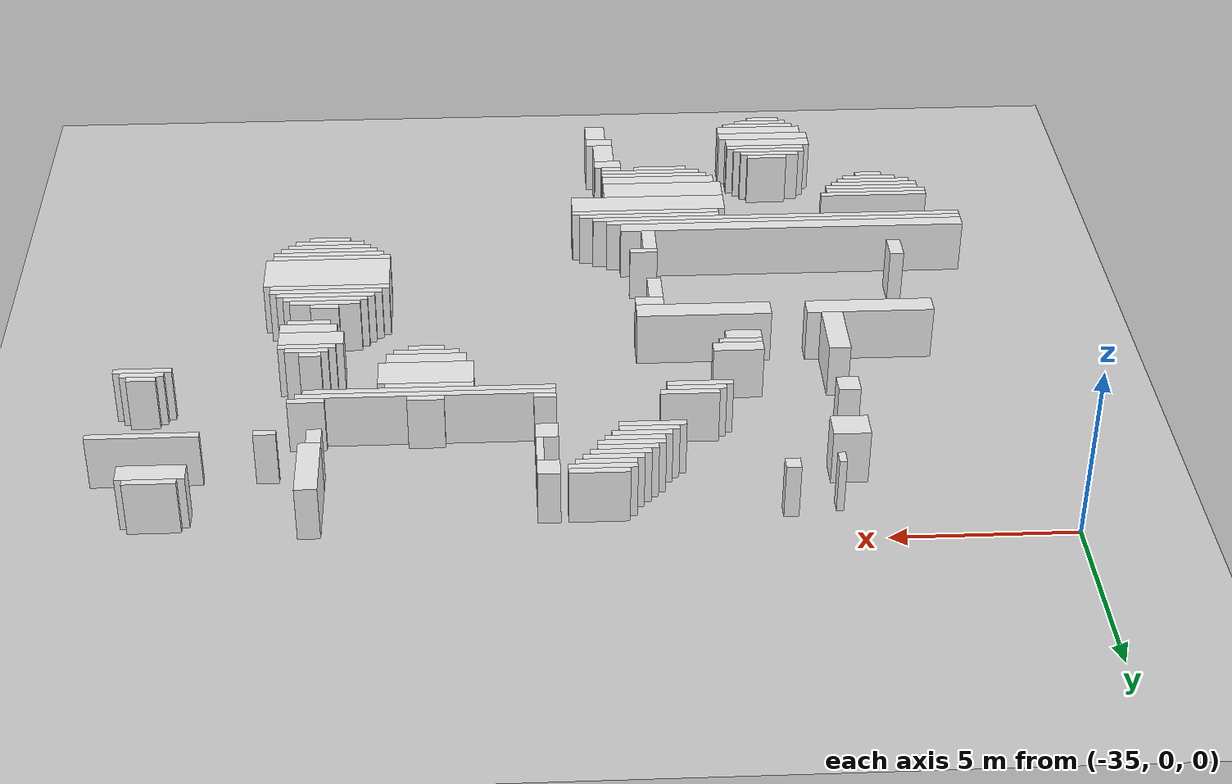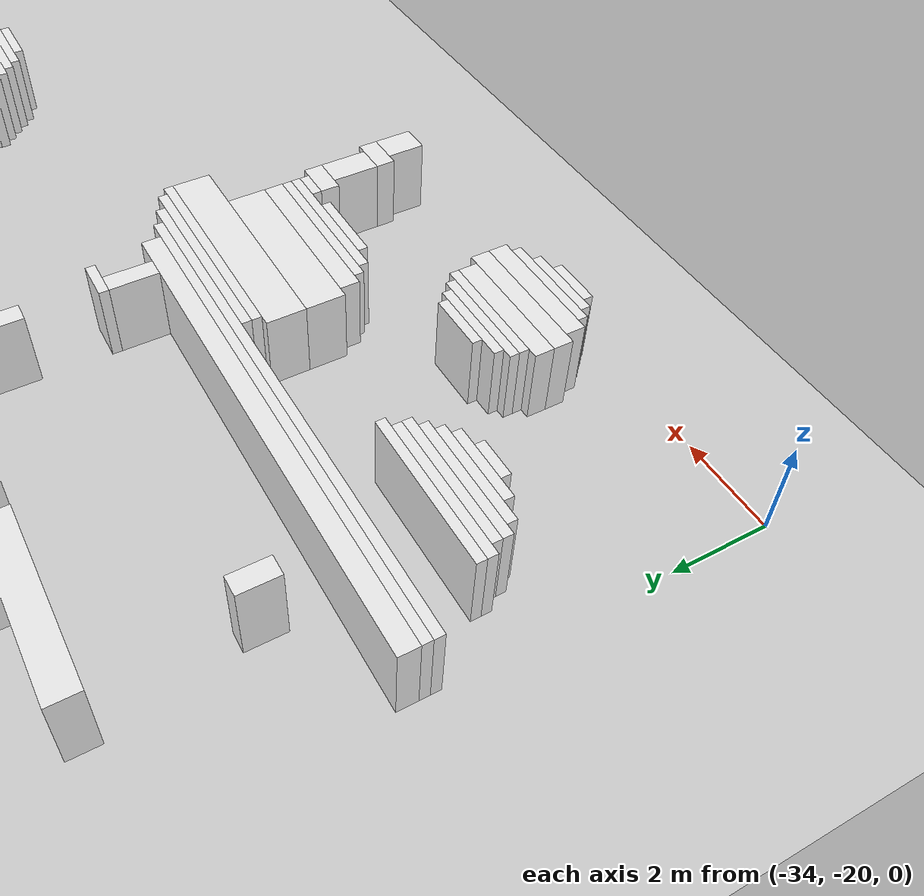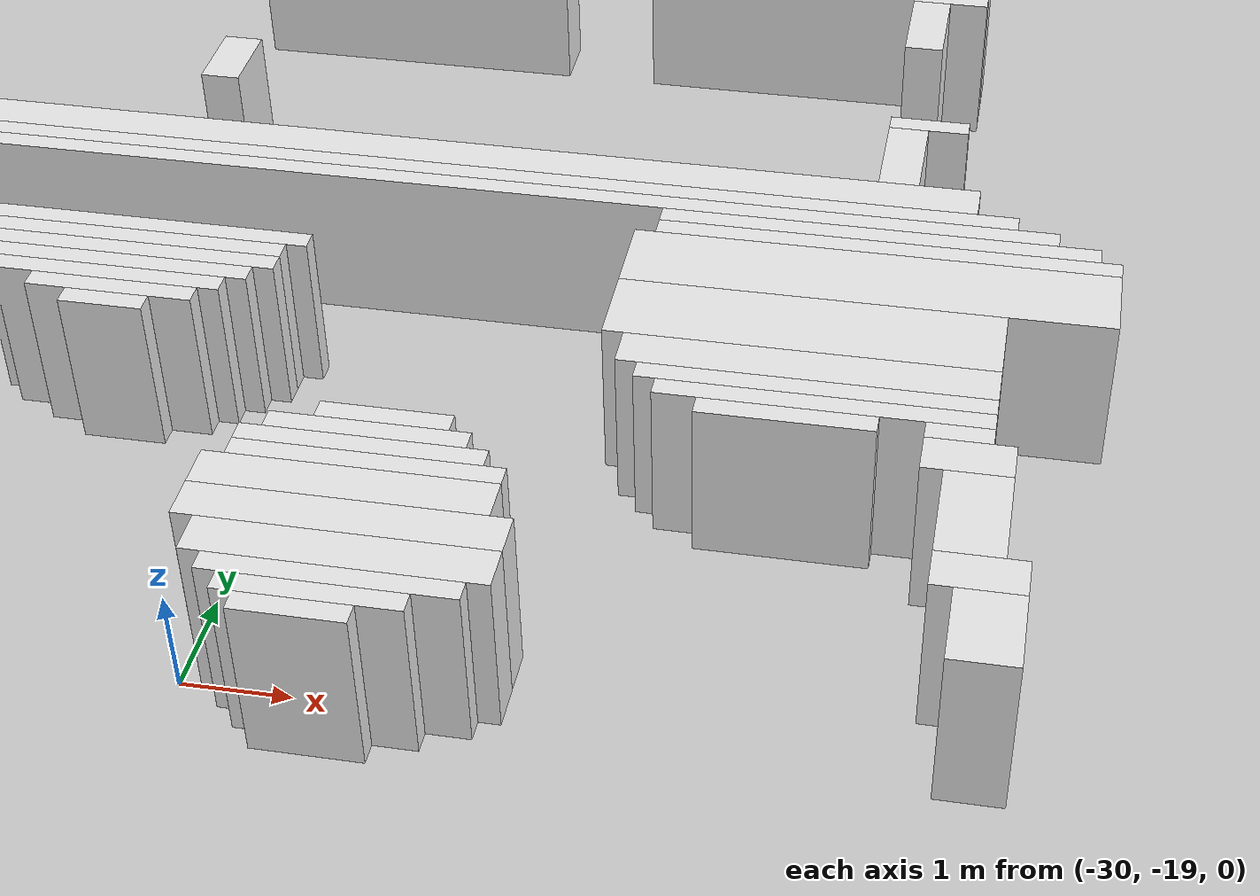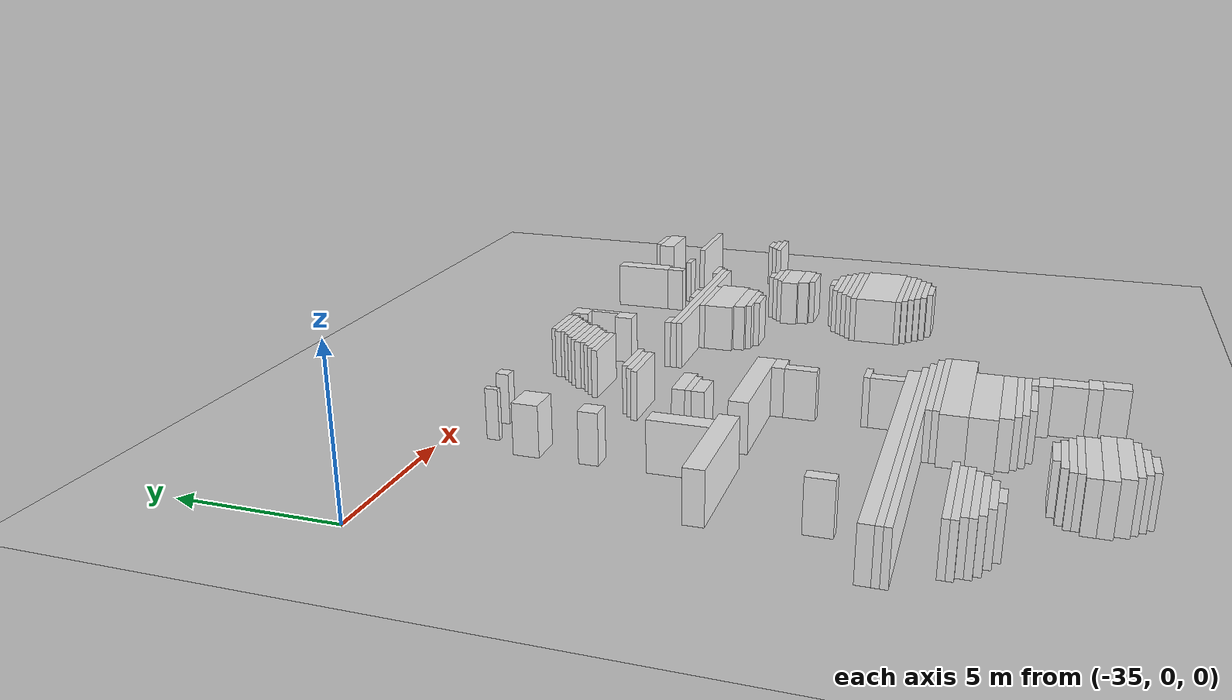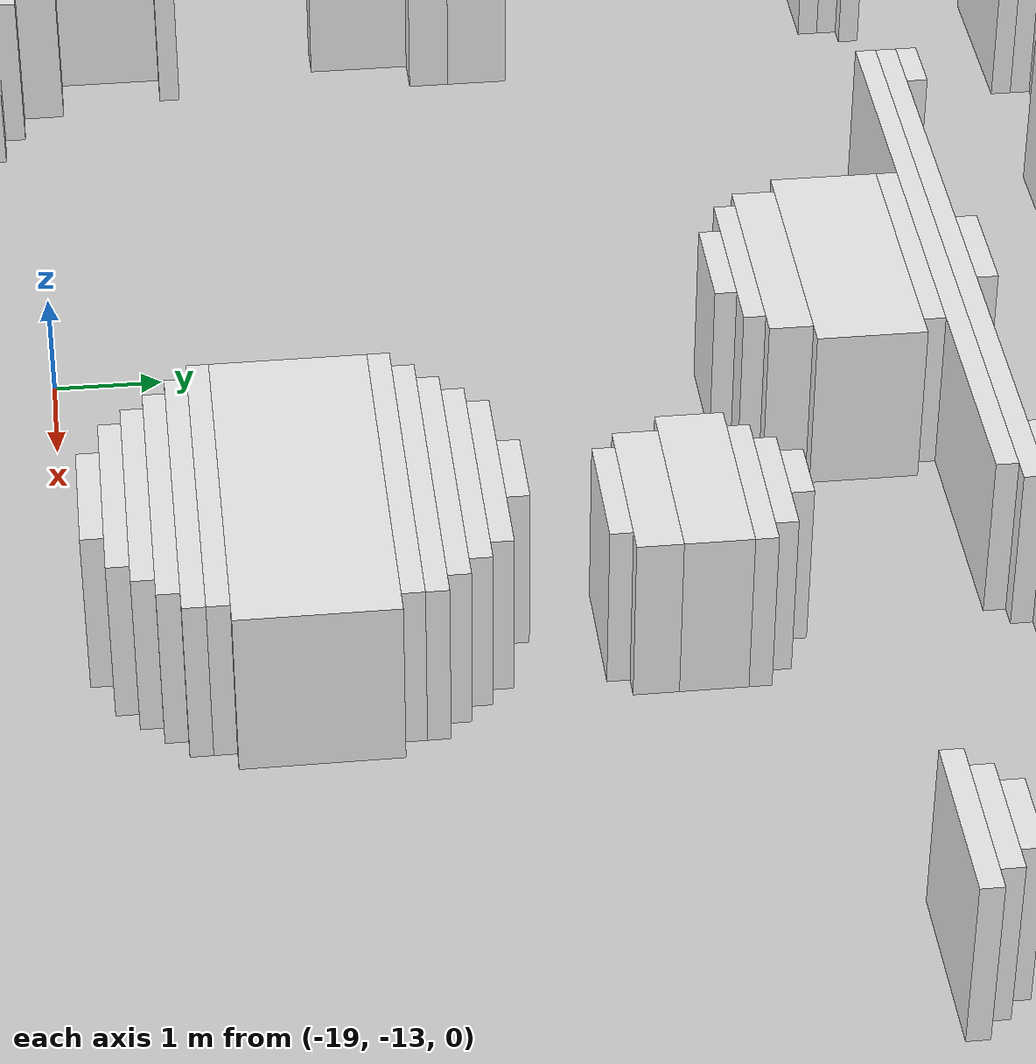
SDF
<sdf version="1.7">
 <world name="default">
  <model name="ground_plane">
   <static>1</static>
   <link name="link">
    <collision name="collision">
     <geometry><plane><normal>0 0 1</normal><size>120 120</size></plane></geometry>
    </collision>
    <visual name="visual">
     <geometry><plane><normal>0 0 1</normal><size>120 120</size></plane></geometry>
     <material>
      <script><uri>file://media/materials/scripts/gazebo.material</uri><name>Gazebo/Grey</name></script>
     </material>
    </visual>
   </link>
  </model>
  <model name="random_complex_03_model">
   <static>1</static>
   <link name="obs_1676">
    <pose>-22.6000 -1.1000 0.8000 0 0 0</pose>
    <collision name="obs_1676_col"><geometry><box><size>1.6000 0.2000 1.6000</size></box></geometry></collision>
    <visual name="obs_1676_vis">
     <geometry><box><size>1.6000 0.2000 1.6000</size></box></geometry>
     <material>
      <script><uri>file://media/materials/scripts/gazebo.material</uri><name>Gazebo/White</name></script>
     </material>
    </visual>
   </link>
   <link name="obs_1677">
    <pose>-11.1000 -1.1000 0.8000 0 0 0</pose>
    <collision name="obs_1677_col"><geometry><box><size>1.4000 0.2000 1.6000</size></box></geometry></collision>
    <visual name="obs_1677_vis">
     <geometry><box><size>1.4000 0.2000 1.6000</size></box></geometry>
     <material>
      <script><uri>file://media/materials/scripts/gazebo.material</uri><name>Gazebo/White</name></script>
     </material>
    </visual>
   </link>
   <link name="obs_1683">
    <pose>-27.6000 -1.2000 0.8000 0 0 0</pose>
    <collision name="obs_1683_col"><geometry><box><size>0.4000 0.4000 1.6000</size></box></geometry></collision>
    <visual name="obs_1683_vis">
     <geometry><box><size>0.4000 0.4000 1.6000</size></box></geometry>
     <material>
      <script><uri>file://media/materials/scripts/gazebo.material</uri><name>Gazebo/White</name></script>
     </material>
    </visual>
   </link>
   <link name="obs_1686">
    <pose>-22.7000 -1.3000 0.8000 0 0 0</pose>
    <collision name="obs_1686_col"><geometry><box><size>1.8000 0.2000 1.6000</size></box></geometry></collision>
    <visual name="obs_1686_vis">
     <geometry><box><size>1.8000 0.2000 1.6000</size></box></geometry>
     <material>
      <script><uri>file://media/materials/scripts/gazebo.material</uri><name>Gazebo/White</name></script>
     </material>
    </visual>
   </link>
   <link name="obs_1695">
    <pose>-21.3000 -1.3000 0.8000 0 0 0</pose>
    <collision name="obs_1695_col"><geometry><box><size>0.6000 0.6000 1.6000</size></box></geometry></collision>
    <visual name="obs_1695_vis">
     <geometry><box><size>0.6000 0.6000 1.6000</size></box></geometry>
     <material>
      <script><uri>file://media/materials/scripts/gazebo.material</uri><name>Gazebo/White</name></script>
     </material>
    </visual>
   </link>
   <link name="obs_1696">
    <pose>-28.9000 -1.4000 0.8000 0 0 0</pose>
    <collision name="obs_1696_col"><geometry><box><size>0.2000 0.4000 1.6000</size></box></geometry></collision>
    <visual name="obs_1696_vis">
     <geometry><box><size>0.2000 0.4000 1.6000</size></box></geometry>
     <material>
      <script><uri>file://media/materials/scripts/gazebo.material</uri><name>Gazebo/White</name></script>
     </material>
    </visual>
   </link>
   <link name="obs_1698">
    <pose>-22.8000 -1.5000 0.8000 0 0 0</pose>
    <collision name="obs_1698_col"><geometry><box><size>1.6000 0.2000 1.6000</size></box></geometry></collision>
    <visual name="obs_1698_vis">
     <geometry><box><size>1.6000 0.2000 1.6000</size></box></geometry>
     <material>
      <script><uri>file://media/materials/scripts/gazebo.material</uri><name>Gazebo/White</name></script>
     </material>
    </visual>
   </link>
   <link name="obs_1704">
    <pose>-11.1000 -1.5000 0.8000 0 0 0</pose>
    <collision name="obs_1704_col"><geometry><box><size>1.8000 0.6000 1.6000</size></box></geometry></collision>
    <visual name="obs_1704_vis">
     <geometry><box><size>1.8000 0.6000 1.6000</size></box></geometry>
     <material>
      <script><uri>file://media/materials/scripts/gazebo.material</uri><name>Gazebo/White</name></script>
     </material>
    </visual>
   </link>
   <link name="obs_1708">
    <pose>-23.0000 -1.7000 0.8000 0 0 0</pose>
    <collision name="obs_1708_col"><geometry><box><size>1.6000 0.2000 1.6000</size></box></geometry></collision>
    <visual name="obs_1708_vis">
     <geometry><box><size>1.6000 0.2000 1.6000</size></box></geometry>
     <material>
      <script><uri>file://media/materials/scripts/gazebo.material</uri><name>Gazebo/White</name></script>
     </material>
    </visual>
   </link>
   <link name="obs_1715">
    <pose>-23.2000 -1.9000 0.8000 0 0 0</pose>
    <collision name="obs_1715_col"><geometry><box><size>1.6000 0.2000 1.6000</size></box></geometry></collision>
    <visual name="obs_1715_vis">
     <geometry><box><size>1.6000 0.2000 1.6000</size></box></geometry>
     <material>
      <script><uri>file://media/materials/scripts/gazebo.material</uri><name>Gazebo/White</name></script>
     </material>
    </visual>
   </link>
   <link name="obs_1724">
    <pose>-23.4000 -2.1000 0.8000 0 0 0</pose>
    <collision name="obs_1724_col"><geometry><box><size>1.6000 0.2000 1.6000</size></box></geometry></collision>
    <visual name="obs_1724_vis">
     <geometry><box><size>1.6000 0.2000 1.6000</size></box></geometry>
     <material>
      <script><uri>file://media/materials/scripts/gazebo.material</uri><name>Gazebo/White</name></script>
     </material>
    </visual>
   </link>
   <link name="obs_1734">
    <pose>-23.5000 -2.3000 0.8000 0 0 0</pose>
    <collision name="obs_1734_col"><geometry><box><size>1.8000 0.2000 1.6000</size></box></geometry></collision>
    <visual name="obs_1734_vis">
     <geometry><box><size>1.8000 0.2000 1.6000</size></box></geometry>
     <material>
      <script><uri>file://media/materials/scripts/gazebo.material</uri><name>Gazebo/White</name></script>
     </material>
    </visual>
   </link>
   <link name="obs_1739">
    <pose>-15.1000 -1.6000 0.8000 0 0 0</pose>
    <collision name="obs_1739_col"><geometry><box><size>0.6000 2.0000 1.6000</size></box></geometry></collision>
    <visual name="obs_1739_vis">
     <geometry><box><size>0.6000 2.0000 1.6000</size></box></geometry>
     <material>
      <script><uri>file://media/materials/scripts/gazebo.material</uri><name>Gazebo/White</name></script>
     </material>
    </visual>
   </link>
   <link name="obs_1740">
    <pose>-21.1000 -2.1000 0.8000 0 0 0</pose>
    <collision name="obs_1740_col"><geometry><box><size>0.2000 1.0000 1.6000</size></box></geometry></collision>
    <visual name="obs_1740_vis">
     <geometry><box><size>0.2000 1.0000 1.6000</size></box></geometry>
     <material>
      <script><uri>file://media/materials/scripts/gazebo.material</uri><name>Gazebo/White</name></script>
     </material>
    </visual>
   </link>
   <link name="obs_1743">
    <pose>-23.6000 -2.5000 0.8000 0 0 0</pose>
    <collision name="obs_1743_col"><geometry><box><size>1.6000 0.2000 1.6000</size></box></geometry></collision>
    <visual name="obs_1743_vis">
     <geometry><box><size>1.6000 0.2000 1.6000</size></box></geometry>
     <material>
      <script><uri>file://media/materials/scripts/gazebo.material</uri><name>Gazebo/White</name></script>
     </material>
    </visual>
   </link>
   <link name="obs_1751">
    <pose>-23.8000 -2.7000 0.8000 0 0 0</pose>
    <collision name="obs_1751_col"><geometry><box><size>1.6000 0.2000 1.6000</size></box></geometry></collision>
    <visual name="obs_1751_vis">
     <geometry><box><size>1.6000 0.2000 1.6000</size></box></geometry>
     <material>
      <script><uri>file://media/materials/scripts/gazebo.material</uri><name>Gazebo/White</name></script>
     </material>
    </visual>
   </link>
   <link name="obs_1759">
    <pose>-24.0000 -2.9000 0.8000 0 0 0</pose>
    <collision name="obs_1759_col"><geometry><box><size>1.6000 0.2000 1.6000</size></box></geometry></collision>
    <visual name="obs_1759_vis">
     <geometry><box><size>1.6000 0.2000 1.6000</size></box></geometry>
     <material>
      <script><uri>file://media/materials/scripts/gazebo.material</uri><name>Gazebo/White</name></script>
     </material>
    </visual>
   </link>
   <link name="obs_1764">
    <pose>-29.3000 -2.8000 0.8000 0 0 0</pose>
    <collision name="obs_1764_col"><geometry><box><size>1.0000 0.8000 1.6000</size></box></geometry></collision>
    <visual name="obs_1764_vis">
     <geometry><box><size>1.0000 0.8000 1.6000</size></box></geometry>
     <material>
      <script><uri>file://media/materials/scripts/gazebo.material</uri><name>Gazebo/White</name></script>
     </material>
    </visual>
   </link>
   <link name="obs_1765">
    <pose>-21.3000 -2.9000 0.8000 0 0 0</pose>
    <collision name="obs_1765_col"><geometry><box><size>0.6000 0.6000 1.6000</size></box></geometry></collision>
    <visual name="obs_1765_vis">
     <geometry><box><size>0.6000 0.6000 1.6000</size></box></geometry>
     <material>
      <script><uri>file://media/materials/scripts/gazebo.material</uri><name>Gazebo/White</name></script>
     </material>
    </visual>
   </link>
   <link name="obs_1766">
    <pose>-15.2000 -2.9000 0.8000 0 0 0</pose>
    <collision name="obs_1766_col"><geometry><box><size>0.4000 0.6000 1.6000</size></box></geometry></collision>
    <visual name="obs_1766_vis">
     <geometry><box><size>0.4000 0.6000 1.6000</size></box></geometry>
     <material>
      <script><uri>file://media/materials/scripts/gazebo.material</uri><name>Gazebo/White</name></script>
     </material>
    </visual>
   </link>
   <link name="obs_1767">
    <pose>-24.1000 -3.1000 0.8000 0 0 0</pose>
    <collision name="obs_1767_col"><geometry><box><size>1.8000 0.2000 1.6000</size></box></geometry></collision>
    <visual name="obs_1767_vis">
     <geometry><box><size>1.8000 0.2000 1.6000</size></box></geometry>
     <material>
      <script><uri>file://media/materials/scripts/gazebo.material</uri><name>Gazebo/White</name></script>
     </material>
    </visual>
   </link>
   <link name="obs_1768">
    <pose>-13.9000 -3.1000 0.8000 0 0 0</pose>
    <collision name="obs_1768_col"><geometry><box><size>0.6000 0.2000 1.6000</size></box></geometry></collision>
    <visual name="obs_1768_vis">
     <geometry><box><size>0.6000 0.2000 1.6000</size></box></geometry>
     <material>
      <script><uri>file://media/materials/scripts/gazebo.material</uri><name>Gazebo/White</name></script>
     </material>
    </visual>
   </link>
   <link name="obs_1769">
    <pose>-10.7000 -3.1000 0.8000 0 0 0</pose>
    <collision name="obs_1769_col"><geometry><box><size>3.0000 0.2000 1.6000</size></box></geometry></collision>
    <visual name="obs_1769_vis">
     <geometry><box><size>3.0000 0.2000 1.6000</size></box></geometry>
     <material>
      <script><uri>file://media/materials/scripts/gazebo.material</uri><name>Gazebo/White</name></script>
     </material>
    </visual>
   </link>
   <link name="obs_1792">
    <pose>-25.2000 -4.5000 0.8000 0 0 0</pose>
    <collision name="obs_1792_col"><geometry><box><size>1.6000 0.2000 1.6000</size></box></geometry></collision>
    <visual name="obs_1792_vis">
     <geometry><box><size>1.6000 0.2000 1.6000</size></box></geometry>
     <material>
      <script><uri>file://media/materials/scripts/gazebo.material</uri><name>Gazebo/White</name></script>
     </material>
    </visual>
   </link>
   <link name="obs_1793">
    <pose>-21.3000 -4.5000 0.8000 0 0 0</pose>
    <collision name="obs_1793_col"><geometry><box><size>0.6000 0.2000 1.6000</size></box></geometry></collision>
    <visual name="obs_1793_vis">
     <geometry><box><size>0.6000 0.2000 1.6000</size></box></geometry>
     <material>
      <script><uri>file://media/materials/scripts/gazebo.material</uri><name>Gazebo/White</name></script>
     </material>
    </visual>
   </link>
   <link name="obs_1794">
    <pose>-18.1000 -4.5000 0.8000 0 0 0</pose>
    <collision name="obs_1794_col"><geometry><box><size>1.0000 0.2000 1.6000</size></box></geometry></collision>
    <visual name="obs_1794_vis">
     <geometry><box><size>1.0000 0.2000 1.6000</size></box></geometry>
     <material>
      <script><uri>file://media/materials/scripts/gazebo.material</uri><name>Gazebo/White</name></script>
     </material>
    </visual>
   </link>
   <link name="obs_1795">
    <pose>-14.9000 -4.5000 0.8000 0 0 0</pose>
    <collision name="obs_1795_col"><geometry><box><size>1.0000 0.2000 1.6000</size></box></geometry></collision>
    <visual name="obs_1795_vis">
     <geometry><box><size>1.0000 0.2000 1.6000</size></box></geometry>
     <material>
      <script><uri>file://media/materials/scripts/gazebo.material</uri><name>Gazebo/White</name></script>
     </material>
    </visual>
   </link>
   <link name="obs_1802">
    <pose>-25.4000 -4.7000 0.8000 0 0 0</pose>
    <collision name="obs_1802_col"><geometry><box><size>1.6000 0.2000 1.6000</size></box></geometry></collision>
    <visual name="obs_1802_vis">
     <geometry><box><size>1.6000 0.2000 1.6000</size></box></geometry>
     <material>
      <script><uri>file://media/materials/scripts/gazebo.material</uri><name>Gazebo/White</name></script>
     </material>
    </visual>
   </link>
   <link name="obs_1803">
    <pose>-18.1000 -4.7000 0.8000 0 0 0</pose>
    <collision name="obs_1803_col"><geometry><box><size>7.0000 0.2000 1.6000</size></box></geometry></collision>
    <visual name="obs_1803_vis">
     <geometry><box><size>7.0000 0.2000 1.6000</size></box></geometry>
     <material>
      <script><uri>file://media/materials/scripts/gazebo.material</uri><name>Gazebo/White</name></script>
     </material>
    </visual>
   </link>
   <link name="obs_1805">
    <pose>-29.5000 -4.7000 0.8000 0 0 0</pose>
    <collision name="obs_1805_col"><geometry><box><size>0.6000 0.6000 1.6000</size></box></geometry></collision>
    <visual name="obs_1805_vis">
     <geometry><box><size>0.6000 0.6000 1.6000</size></box></geometry>
     <material>
      <script><uri>file://media/materials/scripts/gazebo.material</uri><name>Gazebo/White</name></script>
     </material>
    </visual>
   </link>
   <link name="obs_1806">
    <pose>-25.5000 -4.9000 0.8000 0 0 0</pose>
    <collision name="obs_1806_col"><geometry><box><size>1.8000 0.2000 1.6000</size></box></geometry></collision>
    <visual name="obs_1806_vis">
     <geometry><box><size>1.8000 0.2000 1.6000</size></box></geometry>
     <material>
      <script><uri>file://media/materials/scripts/gazebo.material</uri><name>Gazebo/White</name></script>
     </material>
    </visual>
   </link>
   <link name="obs_1807">
    <pose>-18.2000 -4.9000 0.8000 0 0 0</pose>
    <collision name="obs_1807_col"><geometry><box><size>6.8000 0.2000 1.6000</size></box></geometry></collision>
    <visual name="obs_1807_vis">
     <geometry><box><size>6.8000 0.2000 1.6000</size></box></geometry>
     <material>
      <script><uri>file://media/materials/scripts/gazebo.material</uri><name>Gazebo/White</name></script>
     </material>
    </visual>
   </link>
   <link name="obs_1814">
    <pose>-18.2000 -5.1000 0.8000 0 0 0</pose>
    <collision name="obs_1814_col"><geometry><box><size>2.4000 0.2000 1.6000</size></box></geometry></collision>
    <visual name="obs_1814_vis">
     <geometry><box><size>2.4000 0.2000 1.6000</size></box></geometry>
     <material>
      <script><uri>file://media/materials/scripts/gazebo.material</uri><name>Gazebo/White</name></script>
     </material>
    </visual>
   </link>
   <link name="obs_1827">
    <pose>-10.4000 -5.7000 0.8000 0 0 0</pose>
    <collision name="obs_1827_col"><geometry><box><size>0.8000 0.2000 1.6000</size></box></geometry></collision>
    <visual name="obs_1827_vis">
     <geometry><box><size>0.8000 0.2000 1.6000</size></box></geometry>
     <material>
      <script><uri>file://media/materials/scripts/gazebo.material</uri><name>Gazebo/White</name></script>
     </material>
    </visual>
   </link>
   <link name="obs_1832">
    <pose>-10.4000 -5.9000 0.8000 0 0 0</pose>
    <collision name="obs_1832_col"><geometry><box><size>1.2000 0.2000 1.6000</size></box></geometry></collision>
    <visual name="obs_1832_vis">
     <geometry><box><size>1.2000 0.2000 1.6000</size></box></geometry>
     <material>
      <script><uri>file://media/materials/scripts/gazebo.material</uri><name>Gazebo/White</name></script>
     </material>
    </visual>
   </link>
   <link name="obs_1835">
    <pose>-18.1000 -5.7000 0.8000 0 0 0</pose>
    <collision name="obs_1835_col"><geometry><box><size>2.6000 1.0000 1.6000</size></box></geometry></collision>
    <visual name="obs_1835_vis">
     <geometry><box><size>2.6000 1.0000 1.6000</size></box></geometry>
     <material>
      <script><uri>file://media/materials/scripts/gazebo.material</uri><name>Gazebo/White</name></script>
     </material>
    </visual>
   </link>
   <link name="obs_1837">
    <pose>-10.4000 -6.1000 0.8000 0 0 0</pose>
    <collision name="obs_1837_col"><geometry><box><size>1.6000 0.2000 1.6000</size></box></geometry></collision>
    <visual name="obs_1837_vis">
     <geometry><box><size>1.6000 0.2000 1.6000</size></box></geometry>
     <material>
      <script><uri>file://media/materials/scripts/gazebo.material</uri><name>Gazebo/White</name></script>
     </material>
    </visual>
   </link>
   <link name="obs_1841">
    <pose>-18.1000 -6.4000 0.8000 0 0 0</pose>
    <collision name="obs_1841_col"><geometry><box><size>2.2000 0.4000 1.6000</size></box></geometry></collision>
    <visual name="obs_1841_vis">
     <geometry><box><size>2.2000 0.4000 1.6000</size></box></geometry>
     <material>
      <script><uri>file://media/materials/scripts/gazebo.material</uri><name>Gazebo/White</name></script>
     </material>
    </visual>
   </link>
   <link name="obs_1843">
    <pose>-26.7000 -6.6000 0.8000 0 0 0</pose>
    <collision name="obs_1843_col"><geometry><box><size>1.4000 0.4000 1.6000</size></box></geometry></collision>
    <visual name="obs_1843_vis">
     <geometry><box><size>1.4000 0.4000 1.6000</size></box></geometry>
     <material>
      <script><uri>file://media/materials/scripts/gazebo.material</uri><name>Gazebo/White</name></script>
     </material>
    </visual>
   </link>
   <link name="obs_1845">
    <pose>-18.1000 -6.7000 0.8000 0 0 0</pose>
    <collision name="obs_1845_col"><geometry><box><size>1.8000 0.2000 1.6000</size></box></geometry></collision>
    <visual name="obs_1845_vis">
     <geometry><box><size>1.8000 0.2000 1.6000</size></box></geometry>
     <material>
      <script><uri>file://media/materials/scripts/gazebo.material</uri><name>Gazebo/White</name></script>
     </material>
    </visual>
   </link>
   <link name="obs_1846">
    <pose>-14.9000 -6.7000 0.8000 0 0 0</pose>
    <collision name="obs_1846_col"><geometry><box><size>0.6000 0.2000 1.6000</size></box></geometry></collision>
    <visual name="obs_1846_vis">
     <geometry><box><size>0.6000 0.2000 1.6000</size></box></geometry>
     <material>
      <script><uri>file://media/materials/scripts/gazebo.material</uri><name>Gazebo/White</name></script>
     </material>
    </visual>
   </link>
   <link name="obs_1854">
    <pose>-26.8000 -6.9000 0.8000 0 0 0</pose>
    <collision name="obs_1854_col"><geometry><box><size>1.2000 0.2000 1.6000</size></box></geometry></collision>
    <visual name="obs_1854_vis">
     <geometry><box><size>1.2000 0.2000 1.6000</size></box></geometry>
     <material>
      <script><uri>file://media/materials/scripts/gazebo.material</uri><name>Gazebo/White</name></script>
     </material>
    </visual>
   </link>
   <link name="obs_1855">
    <pose>-18.1000 -6.9000 0.8000 0 0 0</pose>
    <collision name="obs_1855_col"><geometry><box><size>1.0000 0.2000 1.6000</size></box></geometry></collision>
    <visual name="obs_1855_vis">
     <geometry><box><size>1.0000 0.2000 1.6000</size></box></geometry>
     <material>
      <script><uri>file://media/materials/scripts/gazebo.material</uri><name>Gazebo/White</name></script>
     </material>
    </visual>
   </link>
   <link name="obs_1856">
    <pose>-14.8000 -6.9000 0.8000 0 0 0</pose>
    <collision name="obs_1856_col"><geometry><box><size>1.2000 0.2000 1.6000</size></box></geometry></collision>
    <visual name="obs_1856_vis">
     <geometry><box><size>1.2000 0.2000 1.6000</size></box></geometry>
     <material>
      <script><uri>file://media/materials/scripts/gazebo.material</uri><name>Gazebo/White</name></script>
     </material>
    </visual>
   </link>
   <link name="obs_1860">
    <pose>-14.8000 -7.1000 0.8000 0 0 0</pose>
    <collision name="obs_1860_col"><geometry><box><size>1.6000 0.2000 1.6000</size></box></geometry></collision>
    <visual name="obs_1860_vis">
     <geometry><box><size>1.6000 0.2000 1.6000</size></box></geometry>
     <material>
      <script><uri>file://media/materials/scripts/gazebo.material</uri><name>Gazebo/White</name></script>
     </material>
    </visual>
   </link>
   <link name="obs_1864">
    <pose>-26.9000 -7.2000 0.8000 0 0 0</pose>
    <collision name="obs_1864_col"><geometry><box><size>1.0000 0.4000 1.6000</size></box></geometry></collision>
    <visual name="obs_1864_vis">
     <geometry><box><size>1.0000 0.4000 1.6000</size></box></geometry>
     <material>
      <script><uri>file://media/materials/scripts/gazebo.material</uri><name>Gazebo/White</name></script>
     </material>
    </visual>
   </link>
   <link name="obs_1876">
    <pose>-14.9000 -7.5000 0.8000 0 0 0</pose>
    <collision name="obs_1876_col"><geometry><box><size>1.8000 0.6000 1.6000</size></box></geometry></collision>
    <visual name="obs_1876_vis">
     <geometry><box><size>1.8000 0.6000 1.6000</size></box></geometry>
     <material>
      <script><uri>file://media/materials/scripts/gazebo.material</uri><name>Gazebo/White</name></script>
     </material>
    </visual>
   </link>
   <link name="obs_1889">
    <pose>-29.5000 -7.3000 0.8000 0 0 0</pose>
    <collision name="obs_1889_col"><geometry><box><size>0.6000 1.8000 1.6000</size></box></geometry></collision>
    <visual name="obs_1889_vis">
     <geometry><box><size>0.6000 1.8000 1.6000</size></box></geometry>
     <material>
      <script><uri>file://media/materials/scripts/gazebo.material</uri><name>Gazebo/White</name></script>
     </material>
    </visual>
   </link>
   <link name="obs_1890">
    <pose>-14.8000 -8.0000 0.8000 0 0 0</pose>
    <collision name="obs_1890_col"><geometry><box><size>1.6000 0.4000 1.6000</size></box></geometry></collision>
    <visual name="obs_1890_vis">
     <geometry><box><size>1.6000 0.4000 1.6000</size></box></geometry>
     <material>
      <script><uri>file://media/materials/scripts/gazebo.material</uri><name>Gazebo/White</name></script>
     </material>
    </visual>
   </link>
   <link name="obs_1898">
    <pose>-14.8000 -8.3000 0.8000 0 0 0</pose>
    <collision name="obs_1898_col"><geometry><box><size>1.2000 0.2000 1.6000</size></box></geometry></collision>
    <visual name="obs_1898_vis">
     <geometry><box><size>1.2000 0.2000 1.6000</size></box></geometry>
     <material>
      <script><uri>file://media/materials/scripts/gazebo.material</uri><name>Gazebo/White</name></script>
     </material>
    </visual>
   </link>
   <link name="obs_1907">
    <pose>-30.6000 -8.5000 0.8000 0 0 0</pose>
    <collision name="obs_1907_col"><geometry><box><size>3.6000 0.6000 1.6000</size></box></geometry></collision>
    <visual name="obs_1907_vis">
     <geometry><box><size>3.6000 0.6000 1.6000</size></box></geometry>
     <material>
      <script><uri>file://media/materials/scripts/gazebo.material</uri><name>Gazebo/White</name></script>
     </material>
    </visual>
   </link>
   <link name="obs_1908">
    <pose>-25.9000 -8.5000 0.8000 0 0 0</pose>
    <collision name="obs_1908_col"><geometry><box><size>3.8000 0.6000 1.6000</size></box></geometry></collision>
    <visual name="obs_1908_vis">
     <geometry><box><size>3.8000 0.6000 1.6000</size></box></geometry>
     <material>
      <script><uri>file://media/materials/scripts/gazebo.material</uri><name>Gazebo/White</name></script>
     </material>
    </visual>
   </link>
   <link name="obs_1923">
    <pose>-24.4000 -9.0000 0.8000 0 0 0</pose>
    <collision name="obs_1923_col"><geometry><box><size>0.8000 0.4000 1.6000</size></box></geometry></collision>
    <visual name="obs_1923_vis">
     <geometry><box><size>0.8000 0.4000 1.6000</size></box></geometry>
     <material>
      <script><uri>file://media/materials/scripts/gazebo.material</uri><name>Gazebo/White</name></script>
     </material>
    </visual>
   </link>
   <link name="obs_1924">
    <pose>-15.2000 -9.1000 0.8000 0 0 0</pose>
    <collision name="obs_1924_col"><geometry><box><size>0.8000 0.2000 1.6000</size></box></geometry></collision>
    <visual name="obs_1924_vis">
     <geometry><box><size>0.8000 0.2000 1.6000</size></box></geometry>
     <material>
      <script><uri>file://media/materials/scripts/gazebo.material</uri><name>Gazebo/White</name></script>
     </material>
    </visual>
   </link>
   <link name="obs_1933">
    <pose>-15.2000 -9.3000 0.8000 0 0 0</pose>
    <collision name="obs_1933_col"><geometry><box><size>2.0000 0.2000 1.6000</size></box></geometry></collision>
    <visual name="obs_1933_vis">
     <geometry><box><size>2.0000 0.2000 1.6000</size></box></geometry>
     <material>
      <script><uri>file://media/materials/scripts/gazebo.material</uri><name>Gazebo/White</name></script>
     </material>
    </visual>
   </link>
   <link name="obs_1941">
    <pose>-15.2000 -9.5000 0.8000 0 0 0</pose>
    <collision name="obs_1941_col"><geometry><box><size>2.4000 0.2000 1.6000</size></box></geometry></collision>
    <visual name="obs_1941_vis">
     <geometry><box><size>2.4000 0.2000 1.6000</size></box></geometry>
     <material>
      <script><uri>file://media/materials/scripts/gazebo.material</uri><name>Gazebo/White</name></script>
     </material>
    </visual>
   </link>
   <link name="obs_1948">
    <pose>-15.2000 -9.7000 0.8000 0 0 0</pose>
    <collision name="obs_1948_col"><geometry><box><size>2.8000 0.2000 1.6000</size></box></geometry></collision>
    <visual name="obs_1948_vis">
     <geometry><box><size>2.8000 0.2000 1.6000</size></box></geometry>
     <material>
      <script><uri>file://media/materials/scripts/gazebo.material</uri><name>Gazebo/White</name></script>
     </material>
    </visual>
   </link>
   <link name="obs_1956">
    <pose>-15.2000 -9.9000 0.8000 0 0 0</pose>
    <collision name="obs_1956_col"><geometry><box><size>3.2000 0.2000 1.6000</size></box></geometry></collision>
    <visual name="obs_1956_vis">
     <geometry><box><size>3.2000 0.2000 1.6000</size></box></geometry>
     <material>
      <script><uri>file://media/materials/scripts/gazebo.material</uri><name>Gazebo/White</name></script>
     </material>
    </visual>
   </link>
   <link name="obs_1962">
    <pose>-24.6000 -9.7000 0.8000 0 0 0</pose>
    <collision name="obs_1962_col"><geometry><box><size>0.4000 1.0000 1.6000</size></box></geometry></collision>
    <visual name="obs_1962_vis">
     <geometry><box><size>0.4000 1.0000 1.6000</size></box></geometry>
     <material>
      <script><uri>file://media/materials/scripts/gazebo.material</uri><name>Gazebo/White</name></script>
     </material>
    </visual>
   </link>
   <link name="obs_1966">
    <pose>-15.3000 -10.1000 0.8000 0 0 0</pose>
    <collision name="obs_1966_col"><geometry><box><size>3.4000 0.2000 1.6000</size></box></geometry></collision>
    <visual name="obs_1966_vis">
     <geometry><box><size>3.4000 0.2000 1.6000</size></box></geometry>
     <material>
      <script><uri>file://media/materials/scripts/gazebo.material</uri><name>Gazebo/White</name></script>
     </material>
    </visual>
   </link>
   <link name="obs_1987">
    <pose>-15.2000 -10.9000 0.8000 0 0 0</pose>
    <collision name="obs_1987_col"><geometry><box><size>3.6000 1.4000 1.6000</size></box></geometry></collision>
    <visual name="obs_1987_vis">
     <geometry><box><size>3.6000 1.4000 1.6000</size></box></geometry>
     <material>
      <script><uri>file://media/materials/scripts/gazebo.material</uri><name>Gazebo/White</name></script>
     </material>
    </visual>
   </link>
   <link name="obs_1991">
    <pose>-24.4000 -11.7000 0.8000 0 0 0</pose>
    <collision name="obs_1991_col"><geometry><box><size>0.8000 0.2000 1.6000</size></box></geometry></collision>
    <visual name="obs_1991_vis">
     <geometry><box><size>0.8000 0.2000 1.6000</size></box></geometry>
     <material>
      <script><uri>file://media/materials/scripts/gazebo.material</uri><name>Gazebo/White</name></script>
     </material>
    </visual>
   </link>
   <link name="obs_1992">
    <pose>-15.3000 -11.7000 0.8000 0 0 0</pose>
    <collision name="obs_1992_col"><geometry><box><size>3.4000 0.2000 1.6000</size></box></geometry></collision>
    <visual name="obs_1992_vis">
     <geometry><box><size>3.4000 0.2000 1.6000</size></box></geometry>
     <material>
      <script><uri>file://media/materials/scripts/gazebo.material</uri><name>Gazebo/White</name></script>
     </material>
    </visual>
   </link>
   <link name="obs_1997">
    <pose>-31.8000 -11.6000 0.8000 0 0 0</pose>
    <collision name="obs_1997_col"><geometry><box><size>0.4000 0.8000 1.6000</size></box></geometry></collision>
    <visual name="obs_1997_vis">
     <geometry><box><size>0.4000 0.8000 1.6000</size></box></geometry>
     <material>
      <script><uri>file://media/materials/scripts/gazebo.material</uri><name>Gazebo/White</name></script>
     </material>
    </visual>
   </link>
   <link name="obs_2002">
    <pose>-15.2000 -11.9000 0.8000 0 0 0</pose>
    <collision name="obs_2002_col"><geometry><box><size>3.2000 0.2000 1.6000</size></box></geometry></collision>
    <visual name="obs_2002_vis">
     <geometry><box><size>3.2000 0.2000 1.6000</size></box></geometry>
     <material>
      <script><uri>file://media/materials/scripts/gazebo.material</uri><name>Gazebo/White</name></script>
     </material>
    </visual>
   </link>
   <link name="obs_2010">
    <pose>-15.2000 -12.1000 0.8000 0 0 0</pose>
    <collision name="obs_2010_col"><geometry><box><size>2.8000 0.2000 1.6000</size></box></geometry></collision>
    <visual name="obs_2010_vis">
     <geometry><box><size>2.8000 0.2000 1.6000</size></box></geometry>
     <material>
      <script><uri>file://media/materials/scripts/gazebo.material</uri><name>Gazebo/White</name></script>
     </material>
    </visual>
   </link>
   <link name="obs_2018">
    <pose>-15.2000 -12.3000 0.8000 0 0 0</pose>
    <collision name="obs_2018_col"><geometry><box><size>2.4000 0.2000 1.6000</size></box></geometry></collision>
    <visual name="obs_2018_vis">
     <geometry><box><size>2.4000 0.2000 1.6000</size></box></geometry>
     <material>
      <script><uri>file://media/materials/scripts/gazebo.material</uri><name>Gazebo/White</name></script>
     </material>
    </visual>
   </link>
   <link name="obs_2026">
    <pose>-15.2000 -12.5000 0.8000 0 0 0</pose>
    <collision name="obs_2026_col"><geometry><box><size>2.0000 0.2000 1.6000</size></box></geometry></collision>
    <visual name="obs_2026_vis">
     <geometry><box><size>2.0000 0.2000 1.6000</size></box></geometry>
     <material>
      <script><uri>file://media/materials/scripts/gazebo.material</uri><name>Gazebo/White</name></script>
     </material>
    </visual>
   </link>
   <link name="obs_2032">
    <pose>-24.6000 -12.3000 0.8000 0 0 0</pose>
    <collision name="obs_2032_col"><geometry><box><size>0.4000 1.0000 1.6000</size></box></geometry></collision>
    <visual name="obs_2032_vis">
     <geometry><box><size>0.4000 1.0000 1.6000</size></box></geometry>
     <material>
      <script><uri>file://media/materials/scripts/gazebo.material</uri><name>Gazebo/White</name></script>
     </material>
    </visual>
   </link>
   <link name="obs_2037">
    <pose>-15.2000 -12.7000 0.8000 0 0 0</pose>
    <collision name="obs_2037_col"><geometry><box><size>1.2000 0.2000 1.6000</size></box></geometry></collision>
    <visual name="obs_2037_vis">
     <geometry><box><size>1.2000 0.2000 1.6000</size></box></geometry>
     <material>
      <script><uri>file://media/materials/scripts/gazebo.material</uri><name>Gazebo/White</name></script>
     </material>
    </visual>
   </link>
   <link name="obs_2052">
    <pose>-28.9000 -13.0000 0.8000 0 0 0</pose>
    <collision name="obs_2052_col"><geometry><box><size>10.2000 0.4000 1.6000</size></box></geometry></collision>
    <visual name="obs_2052_vis">
     <geometry><box><size>10.2000 0.4000 1.6000</size></box></geometry>
     <material>
      <script><uri>file://media/materials/scripts/gazebo.material</uri><name>Gazebo/White</name></script>
     </material>
    </visual>
   </link>
   <link name="obs_2061">
    <pose>-28.7000 -13.3000 0.8000 0 0 0</pose>
    <collision name="obs_2061_col"><geometry><box><size>10.6000 0.2000 1.6000</size></box></geometry></collision>
    <visual name="obs_2061_vis">
     <geometry><box><size>10.6000 0.2000 1.6000</size></box></geometry>
     <material>
      <script><uri>file://media/materials/scripts/gazebo.material</uri><name>Gazebo/White</name></script>
     </material>
    </visual>
   </link>
   <link name="obs_2068">
    <pose>-28.5000 -13.5000 0.8000 0 0 0</pose>
    <collision name="obs_2068_col"><geometry><box><size>11.0000 0.2000 1.6000</size></box></geometry></collision>
    <visual name="obs_2068_vis">
     <geometry><box><size>11.0000 0.2000 1.6000</size></box></geometry>
     <material>
      <script><uri>file://media/materials/scripts/gazebo.material</uri><name>Gazebo/White</name></script>
     </material>
    </visual>
   </link>
   <link name="obs_2073">
    <pose>-24.7000 -13.7000 0.8000 0 0 0</pose>
    <collision name="obs_2073_col"><geometry><box><size>4.2000 0.2000 1.6000</size></box></geometry></collision>
    <visual name="obs_2073_vis">
     <geometry><box><size>4.2000 0.2000 1.6000</size></box></geometry>
     <material>
      <script><uri>file://media/materials/scripts/gazebo.material</uri><name>Gazebo/White</name></script>
     </material>
    </visual>
   </link>
   <link name="obs_2083">
    <pose>-24.6000 -13.9000 0.8000 0 0 0</pose>
    <collision name="obs_2083_col"><geometry><box><size>4.4000 0.2000 1.6000</size></box></geometry></collision>
    <visual name="obs_2083_vis">
     <geometry><box><size>4.4000 0.2000 1.6000</size></box></geometry>
     <material>
      <script><uri>file://media/materials/scripts/gazebo.material</uri><name>Gazebo/White</name></script>
     </material>
    </visual>
   </link>
   <link name="obs_2111">
    <pose>-24.7000 -14.4000 0.8000 0 0 0</pose>
    <collision name="obs_2111_col"><geometry><box><size>4.6000 0.8000 1.6000</size></box></geometry></collision>
    <visual name="obs_2111_vis">
     <geometry><box><size>4.6000 0.8000 1.6000</size></box></geometry>
     <material>
      <script><uri>file://media/materials/scripts/gazebo.material</uri><name>Gazebo/White</name></script>
     </material>
    </visual>
   </link>
   <link name="obs_2115">
    <pose>-31.6000 -14.7000 0.8000 0 0 0</pose>
    <collision name="obs_2115_col"><geometry><box><size>3.2000 0.2000 1.6000</size></box></geometry></collision>
    <visual name="obs_2115_vis">
     <geometry><box><size>3.2000 0.2000 1.6000</size></box></geometry>
     <material>
      <script><uri>file://media/materials/scripts/gazebo.material</uri><name>Gazebo/White</name></script>
     </material>
    </visual>
   </link>
   <link name="obs_2120">
    <pose>-31.7000 -14.9000 0.8000 0 0 0</pose>
    <collision name="obs_2120_col"><geometry><box><size>3.0000 0.2000 1.6000</size></box></geometry></collision>
    <visual name="obs_2120_vis">
     <geometry><box><size>3.0000 0.2000 1.6000</size></box></geometry>
     <material>
      <script><uri>file://media/materials/scripts/gazebo.material</uri><name>Gazebo/White</name></script>
     </material>
    </visual>
   </link>
   <link name="obs_2129">
    <pose>-31.6000 -15.1000 0.8000 0 0 0</pose>
    <collision name="obs_2129_col"><geometry><box><size>2.8000 0.2000 1.6000</size></box></geometry></collision>
    <visual name="obs_2129_vis">
     <geometry><box><size>2.8000 0.2000 1.6000</size></box></geometry>
     <material>
      <script><uri>file://media/materials/scripts/gazebo.material</uri><name>Gazebo/White</name></script>
     </material>
    </visual>
   </link>
   <link name="obs_2136">
    <pose>-31.7000 -15.3000 0.8000 0 0 0</pose>
    <collision name="obs_2136_col"><geometry><box><size>2.6000 0.2000 1.6000</size></box></geometry></collision>
    <visual name="obs_2136_vis">
     <geometry><box><size>2.6000 0.2000 1.6000</size></box></geometry>
     <material>
      <script><uri>file://media/materials/scripts/gazebo.material</uri><name>Gazebo/White</name></script>
     </material>
    </visual>
   </link>
   <link name="obs_2143">
    <pose>-25.2000 -15.2000 0.8000 0 0 0</pose>
    <collision name="obs_2143_col"><geometry><box><size>3.6000 0.8000 1.6000</size></box></geometry></collision>
    <visual name="obs_2143_vis">
     <geometry><box><size>3.6000 0.8000 1.6000</size></box></geometry>
     <material>
      <script><uri>file://media/materials/scripts/gazebo.material</uri><name>Gazebo/White</name></script>
     </material>
    </visual>
   </link>
   <link name="obs_2147">
    <pose>-31.7000 -15.5000 0.8000 0 0 0</pose>
    <collision name="obs_2147_col"><geometry><box><size>2.2000 0.2000 1.6000</size></box></geometry></collision>
    <visual name="obs_2147_vis">
     <geometry><box><size>2.2000 0.2000 1.6000</size></box></geometry>
     <material>
      <script><uri>file://media/materials/scripts/gazebo.material</uri><name>Gazebo/White</name></script>
     </material>
    </visual>
   </link>
   <link name="obs_2157">
    <pose>-31.6000 -15.7000 0.8000 0 0 0</pose>
    <collision name="obs_2157_col"><geometry><box><size>1.6000 0.2000 1.6000</size></box></geometry></collision>
    <visual name="obs_2157_vis">
     <geometry><box><size>1.6000 0.2000 1.6000</size></box></geometry>
     <material>
      <script><uri>file://media/materials/scripts/gazebo.material</uri><name>Gazebo/White</name></script>
     </material>
    </visual>
   </link>
   <link name="obs_2165">
    <pose>-25.1000 -15.8000 0.8000 0 0 0</pose>
    <collision name="obs_2165_col"><geometry><box><size>3.4000 0.4000 1.6000</size></box></geometry></collision>
    <visual name="obs_2165_vis">
     <geometry><box><size>3.4000 0.4000 1.6000</size></box></geometry>
     <material>
      <script><uri>file://media/materials/scripts/gazebo.material</uri><name>Gazebo/White</name></script>
     </material>
    </visual>
   </link>
   <link name="obs_2168">
    <pose>-31.6000 -15.9000 0.8000 0 0 0</pose>
    <collision name="obs_2168_col"><geometry><box><size>0.8000 0.2000 1.6000</size></box></geometry></collision>
    <visual name="obs_2168_vis">
     <geometry><box><size>0.8000 0.2000 1.6000</size></box></geometry>
     <material>
      <script><uri>file://media/materials/scripts/gazebo.material</uri><name>Gazebo/White</name></script>
     </material>
    </visual>
   </link>
   <link name="obs_2177">
    <pose>-25.0000 -16.1000 0.8000 0 0 0</pose>
    <collision name="obs_2177_col"><geometry><box><size>3.2000 0.2000 1.6000</size></box></geometry></collision>
    <visual name="obs_2177_vis">
     <geometry><box><size>3.2000 0.2000 1.6000</size></box></geometry>
     <material>
      <script><uri>file://media/materials/scripts/gazebo.material</uri><name>Gazebo/White</name></script>
     </material>
    </visual>
   </link>
   <link name="obs_2188">
    <pose>-24.9000 -16.3000 0.8000 0 0 0</pose>
    <collision name="obs_2188_col"><geometry><box><size>3.0000 0.2000 1.6000</size></box></geometry></collision>
    <visual name="obs_2188_vis">
     <geometry><box><size>3.0000 0.2000 1.6000</size></box></geometry>
     <material>
      <script><uri>file://media/materials/scripts/gazebo.material</uri><name>Gazebo/White</name></script>
     </material>
    </visual>
   </link>
   <link name="obs_2196">
    <pose>-25.2000 -16.5000 0.8000 0 0 0</pose>
    <collision name="obs_2196_col"><geometry><box><size>1.6000 0.2000 1.6000</size></box></geometry></collision>
    <visual name="obs_2196_vis">
     <geometry><box><size>1.6000 0.2000 1.6000</size></box></geometry>
     <material>
      <script><uri>file://media/materials/scripts/gazebo.material</uri><name>Gazebo/White</name></script>
     </material>
    </visual>
   </link>
   <link name="obs_2197">
    <pose>-23.7000 -16.5000 0.8000 0 0 0</pose>
    <collision name="obs_2197_col"><geometry><box><size>0.6000 0.2000 1.6000</size></box></geometry></collision>
    <visual name="obs_2197_vis">
     <geometry><box><size>0.6000 0.2000 1.6000</size></box></geometry>
     <material>
      <script><uri>file://media/materials/scripts/gazebo.material</uri><name>Gazebo/White</name></script>
     </material>
    </visual>
   </link>
   <link name="obs_2215">
    <pose>-23.6000 -16.8000 0.8000 0 0 0</pose>
    <collision name="obs_2215_col"><geometry><box><size>0.8000 0.4000 1.6000</size></box></geometry></collision>
    <visual name="obs_2215_vis">
     <geometry><box><size>0.8000 0.4000 1.6000</size></box></geometry>
     <material>
      <script><uri>file://media/materials/scripts/gazebo.material</uri><name>Gazebo/White</name></script>
     </material>
    </visual>
   </link>
   <link name="obs_2228">
    <pose>-28.6000 -17.1000 0.8000 0 0 0</pose>
    <collision name="obs_2228_col"><geometry><box><size>1.2000 0.2000 1.6000</size></box></geometry></collision>
    <visual name="obs_2228_vis">
     <geometry><box><size>1.2000 0.2000 1.6000</size></box></geometry>
     <material>
      <script><uri>file://media/materials/scripts/gazebo.material</uri><name>Gazebo/White</name></script>
     </material>
    </visual>
   </link>
   <link name="obs_2237">
    <pose>-28.7000 -17.3000 0.8000 0 0 0</pose>
    <collision name="obs_2237_col"><geometry><box><size>1.8000 0.2000 1.6000</size></box></geometry></collision>
    <visual name="obs_2237_vis">
     <geometry><box><size>1.8000 0.2000 1.6000</size></box></geometry>
     <material>
      <script><uri>file://media/materials/scripts/gazebo.material</uri><name>Gazebo/White</name></script>
     </material>
    </visual>
   </link>
   <link name="obs_2246">
    <pose>-28.7000 -17.5000 0.8000 0 0 0</pose>
    <collision name="obs_2246_col"><geometry><box><size>2.2000 0.2000 1.6000</size></box></geometry></collision>
    <visual name="obs_2246_vis">
     <geometry><box><size>2.2000 0.2000 1.6000</size></box></geometry>
     <material>
      <script><uri>file://media/materials/scripts/gazebo.material</uri><name>Gazebo/White</name></script>
     </material>
    </visual>
   </link>
   <link name="obs_2256">
    <pose>-28.6000 -17.7000 0.8000 0 0 0</pose>
    <collision name="obs_2256_col"><geometry><box><size>2.4000 0.2000 1.6000</size></box></geometry></collision>
    <visual name="obs_2256_vis">
     <geometry><box><size>2.4000 0.2000 1.6000</size></box></geometry>
     <material>
      <script><uri>file://media/materials/scripts/gazebo.material</uri><name>Gazebo/White</name></script>
     </material>
    </visual>
   </link>
   <link name="obs_2262">
    <pose>-23.5000 -17.5000 0.8000 0 0 0</pose>
    <collision name="obs_2262_col"><geometry><box><size>0.6000 1.0000 1.6000</size></box></geometry></collision>
    <visual name="obs_2262_vis">
     <geometry><box><size>0.6000 1.0000 1.6000</size></box></geometry>
     <material>
      <script><uri>file://media/materials/scripts/gazebo.material</uri><name>Gazebo/White</name></script>
     </material>
    </visual>
   </link>
   <link name="obs_2270">
    <pose>-28.7000 -18.0000 0.8000 0 0 0</pose>
    <collision name="obs_2270_col"><geometry><box><size>2.6000 0.4000 1.6000</size></box></geometry></collision>
    <visual name="obs_2270_vis">
     <geometry><box><size>2.6000 0.4000 1.6000</size></box></geometry>
     <material>
      <script><uri>file://media/materials/scripts/gazebo.material</uri><name>Gazebo/White</name></script>
     </material>
    </visual>
   </link>
   <link name="obs_2275">
    <pose>-23.4000 -18.2000 0.8000 0 0 0</pose>
    <collision name="obs_2275_col"><geometry><box><size>0.8000 0.4000 1.6000</size></box></geometry></collision>
    <visual name="obs_2275_vis">
     <geometry><box><size>0.8000 0.4000 1.6000</size></box></geometry>
     <material>
      <script><uri>file://media/materials/scripts/gazebo.material</uri><name>Gazebo/White</name></script>
     </material>
    </visual>
   </link>
   <link name="obs_2283">
    <pose>-28.6000 -18.4000 0.8000 0 0 0</pose>
    <collision name="obs_2283_col"><geometry><box><size>2.8000 0.4000 1.6000</size></box></geometry></collision>
    <visual name="obs_2283_vis">
     <geometry><box><size>2.8000 0.4000 1.6000</size></box></geometry>
     <material>
      <script><uri>file://media/materials/scripts/gazebo.material</uri><name>Gazebo/White</name></script>
     </material>
    </visual>
   </link>
   <link name="obs_2294">
    <pose>-28.5000 -18.8000 0.8000 0 0 0</pose>
    <collision name="obs_2294_col"><geometry><box><size>2.6000 0.4000 1.6000</size></box></geometry></collision>
    <visual name="obs_2294_vis">
     <geometry><box><size>2.6000 0.4000 1.6000</size></box></geometry>
     <material>
      <script><uri>file://media/materials/scripts/gazebo.material</uri><name>Gazebo/White</name></script>
     </material>
    </visual>
   </link>
   <link name="obs_2300">
    <pose>-23.3000 -18.8000 0.8000 0 0 0</pose>
    <collision name="obs_2300_col"><geometry><box><size>0.6000 0.8000 1.6000</size></box></geometry></collision>
    <visual name="obs_2300_vis">
     <geometry><box><size>0.6000 0.8000 1.6000</size></box></geometry>
     <material>
      <script><uri>file://media/materials/scripts/gazebo.material</uri><name>Gazebo/White</name></script>
     </material>
    </visual>
   </link>
   <link name="obs_2303">
    <pose>-28.5000 -19.1000 0.8000 0 0 0</pose>
    <collision name="obs_2303_col"><geometry><box><size>2.2000 0.2000 1.6000</size></box></geometry></collision>
    <visual name="obs_2303_vis">
     <geometry><box><size>2.2000 0.2000 1.6000</size></box></geometry>
     <material>
      <script><uri>file://media/materials/scripts/gazebo.material</uri><name>Gazebo/White</name></script>
     </material>
    </visual>
   </link>
   <link name="obs_2309">
    <pose>-28.6000 -19.3000 0.8000 0 0 0</pose>
    <collision name="obs_2309_col"><geometry><box><size>1.6000 0.2000 1.6000</size></box></geometry></collision>
    <visual name="obs_2309_vis">
     <geometry><box><size>1.6000 0.2000 1.6000</size></box></geometry>
     <material>
      <script><uri>file://media/materials/scripts/gazebo.material</uri><name>Gazebo/White</name></script>
     </material>
    </visual>
   </link>
   <link name="obs_2315">
    <pose>-28.7000 -19.5000 0.8000 0 0 0</pose>
    <collision name="obs_2315_col"><geometry><box><size>1.0000 0.2000 1.6000</size></box></geometry></collision>
    <visual name="obs_2315_vis">
     <geometry><box><size>1.0000 0.2000 1.6000</size></box></geometry>
     <material>
      <script><uri>file://media/materials/scripts/gazebo.material</uri><name>Gazebo/White</name></script>
     </material>
    </visual>
   </link>
  </model>
 </world>
</sdf>
